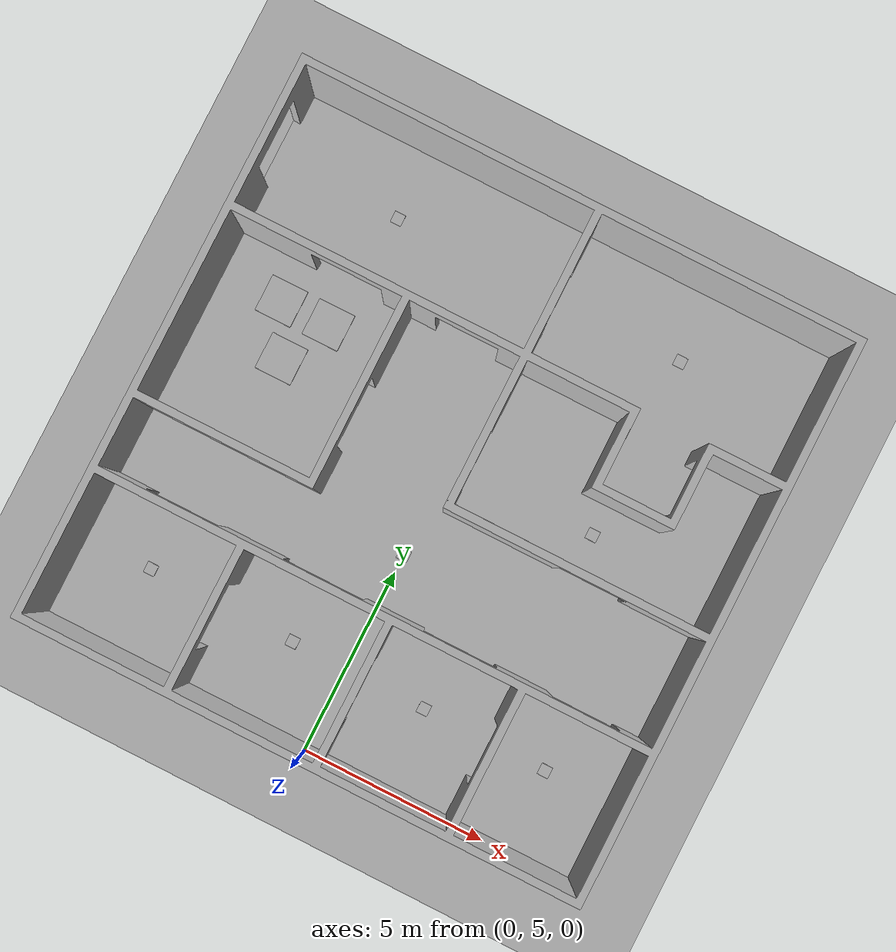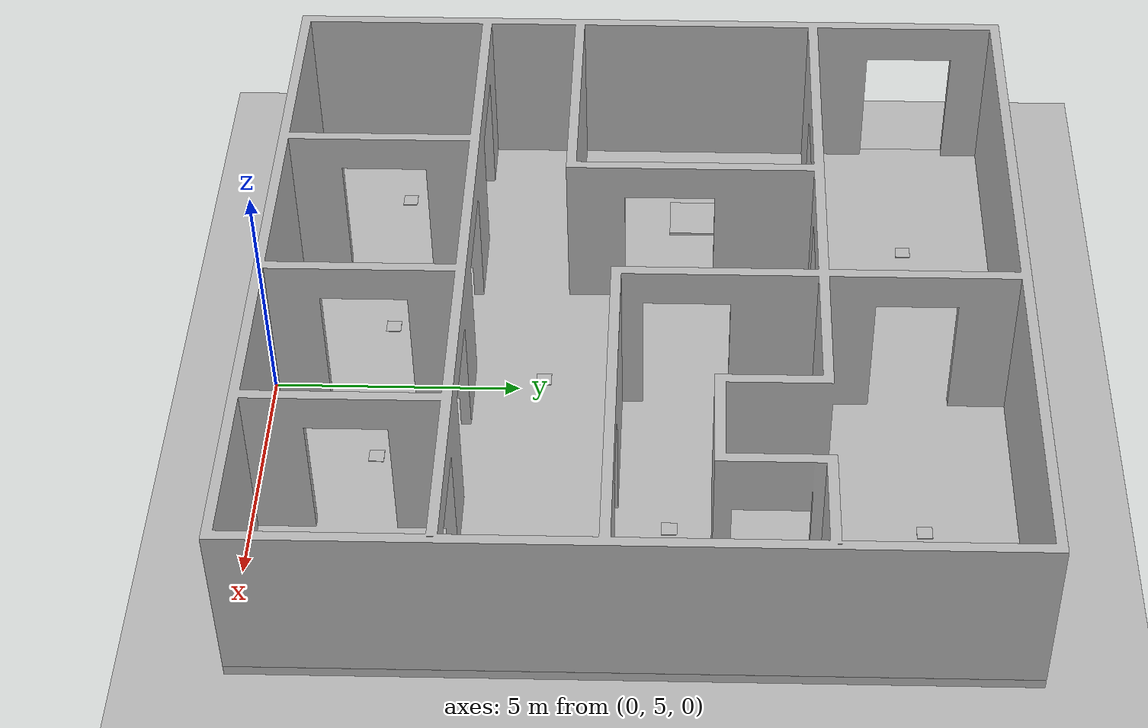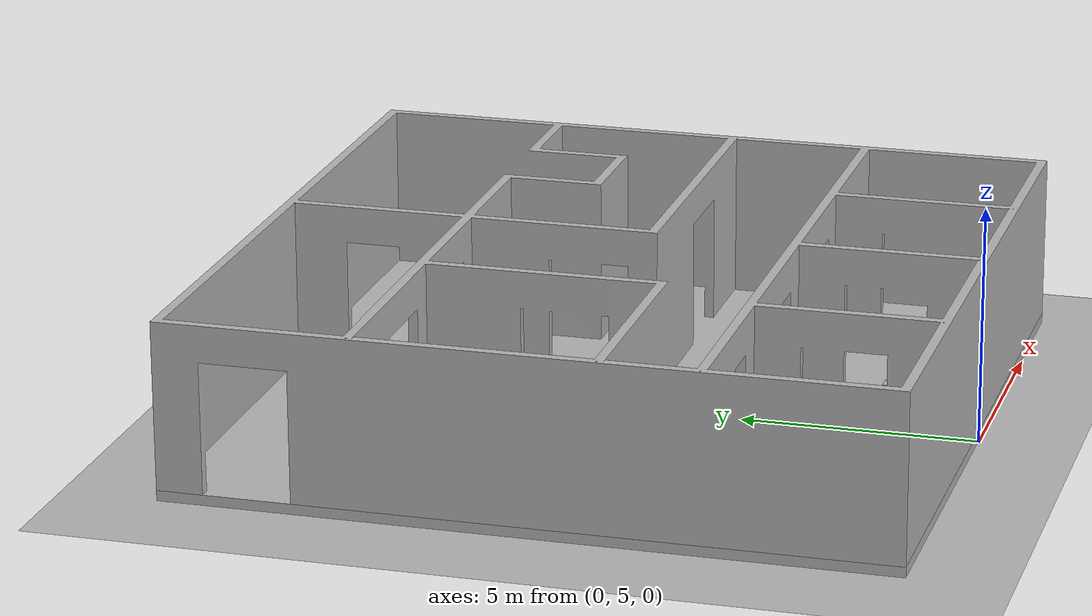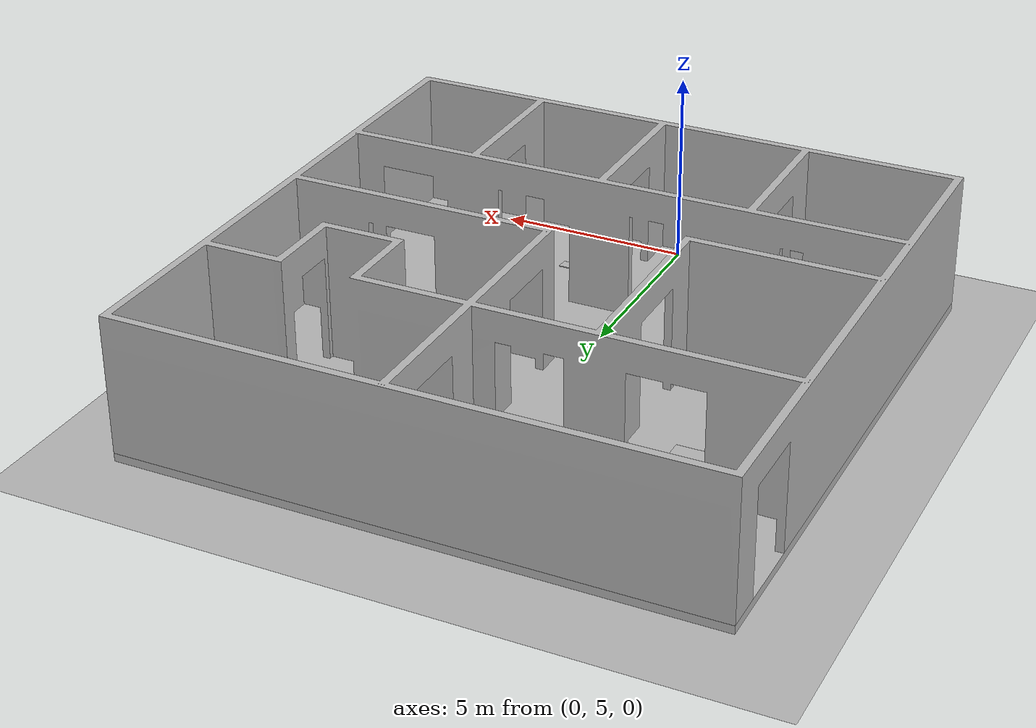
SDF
<?xml version="1.0"?>
<sdf version="1.5">
    <world name="default">
        <include>
            <uri>model://sun</uri>
        </include>

        <include>
            <uri>model://ground_my</uri>
        </include>

        <include>
            <uri>model://house_scene_2</uri>
            <static>true</static>
            <pose>0 12.5 0 0 0 0</pose>
        </include>

        <include>
            <uri>model://qr_1</uri>
            <static>true</static>
            <pose>0 12.5 0 0 0 0</pose>
        </include>

        <include>
            <uri>model://platform</uri>
            <static>true</static>
            <pose>-5.5 6.3 0.27 0 0 0</pose>
        </include>

        <include>
            <uri>model://platform_scnd</uri>
            <static>true</static>
            <pose>-5 13.5 0.27 0 0 0</pose>
        </include>

     </world>
</sdf>

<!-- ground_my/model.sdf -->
<sdf version="1.5">
    <model name="ground">
        <static>true</static>
        <link name="link">
            <collision name="collision">
                <geometry>
                    <mesh>
                        <scale>1 1 1</scale>
                        <uri>model://ground_my/meshes/ground.dae</uri>
                    </mesh>
                    <surface>
                    <friction>
                        <ode>
                            <mu>1.2</mu>
                            <mu2>1.2</mu2>
                        </ode>
                    </friction>
                    </surface>
                </geometry>
            </collision>
            <visual name="visual">
              <geometry>
                <mesh>
                    <scale>1 1 1</scale>
                    <uri>model://ground_my/meshes/ground.dae</uri>
                </mesh>
              </geometry>
             </visual>
        </link>
    </model>
</sdf>

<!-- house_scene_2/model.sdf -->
<sdf version="1.5">
    <model name="house">
        <static>true</static>
        <link name="link">
            <collision name="collision_wall">
                <pose>0 0 0.05 0 0 0</pose>
                <geometry>
                    <mesh>
                        <uri>model://house_scene_2/meshes/scene_two.stl</uri>
                    </mesh>
                </geometry>
            </collision>
            <visual name="visual_walls">
              <pose>0 0 0.05 0 0 0</pose>
              <geometry>
              <mesh>
                 <uri>model://house_scene_2/meshes/scene_two_house_new_doors_FIX.dae</uri>
              </mesh>
              </geometry>
              <material>
                  <script>
                      <uri>model://house_scene_2/materials/scripts</uri>
                      <uri>model://house_scene_2/materials/textures</uri>
                      <name>houseMat/Diffuse</name>
                  </script>
              </material>
             </visual>

             <collision name="collision_flor">
                <pose>0 0 0.05 0 0 0</pose>
                <geometry>
                    <mesh>
                        <uri>model://house_scene_2/meshes/scene_two_house_wallpapers_flor.dae</uri>
                    </mesh>
                </geometry>
            </collision>
            <visual name="visual_flor">
              <pose>0 0 0.05 0 0 0</pose>
              <geometry>
              <mesh>
                 <uri>model://house_scene_2/meshes/scene_two_house_wallpapers_flor.dae</uri>
              </mesh>
              </geometry>
              <material>
                  <script>
                      <uri>model://house_scene_2/materials/scripts</uri>
                      <uri>model://house_scene_2/materials/textures</uri>
                      <name>houseMat/Diffuse</name>
                  </script>
              </material>
             </visual>

        </link>
    </model>
</sdf>

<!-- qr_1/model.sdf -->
<sdf version="1.5">
    <model name="qr">
        <static>true</static>
        <link name="link">
            <collision name="collision1">
                <pose>-4 5.5 0.27 0 0 0</pose>
                <geometry>
                    <mesh>
                        <uri>model://qr_1/meshes/qr.stl</uri>
                    </mesh>
                </geometry>
            </collision>
            <visual name="visual1">

              <pose>-4 5.5 0.27 0 0 0</pose>
              <geometry>
              <mesh>
                 <uri>model://qr_1/meshes/qr1.dae</uri>
              </mesh>
              </geometry>

              <material>
                  <script>
                      <uri>model://qr_1/materials/scripts</uri>
                      <uri>model://qr_1/materials/textures</uri>
                      <name>qrMat/Diffuse</name>
                  </script>
              </material>
             </visual>

             <collision name="collision2">
                <pose>4 5.5 0.27 0 0 0</pose>
                <geometry>
                    <mesh>
                        <uri>model://qr_1/meshes/qr.stl</uri>
                    </mesh>
                </geometry>
            </collision>
             <visual name="visual2">

              <pose>4 5.5 0.27 0 0 0</pose>
              <geometry>
              <mesh>
                 <uri>model://qr_1/meshes/qr3.dae</uri>
              </mesh>
              </geometry>

              <material>
                  <script>
                      <uri>model://qr_1/materials/scripts</uri>
                      <uri>model://qr_1/materials/textures</uri>
                      <name>qrMat/Diffuse</name>
                  </script>
              </material>
             </visual>

             <collision name="collision3">
                <pose>4 0.6 0.27 0 0 0</pose>
                <geometry>
                    <mesh>
                        <uri>model://qr_1/meshes/qr.stl</uri>
                    </mesh>
                </geometry>
            </collision>
            <visual name="visual3">

              <pose>4 0.6 0.27 0 0 0</pose>
              <geometry>
              <mesh>
                 <uri>model://qr_1/meshes/qr4.dae</uri>
              </mesh>
              </geometry>

              <material>
                  <script>
                      <uri>model://qr_1/materials/scripts</uri>
                      <uri>model://qr_1/materials/textures</uri>
                      <name>qrMat/Diffuse</name>
                  </script>
              </material>
             </visual>

             <collision name="collision5">
                <pose>0 -2 0.27 0 0 0</pose>
                <geometry>
                    <mesh>
                        <uri>model://qr_1/meshes/qr.stl</uri>
                    </mesh>
                </geometry>
            </collision>
            <visual name="visual5">

              <pose>0 -2 0.27 0 0 0</pose>
              <geometry>
              <mesh>
                 <uri>model://qr_1/meshes/qr5.dae</uri>
              </mesh>
              </geometry>

              <material>
                  <script>
                      <uri>model://qr_1/materials/scripts</uri>
                      <uri>model://qr_1/materials/textures</uri>
                      <name>qrMat/Diffuse</name>
                  </script>
              </material>
             </visual>

             <collision name="collision6">
                <pose>-5.5 -5.2 0.27 0 0 0</pose>
                <geometry>
                    <mesh>
                        <uri>model://qr_1/meshes/qr.stl</uri>
                    </mesh>
                </geometry>
            </collision>
            <visual name="visual6">

              <pose>-5.5 -5.2 0.27 0 0 0</pose>
              <geometry>
              <mesh>
                 <uri>model://qr_1/meshes/qr13.dae</uri>
              </mesh>
              </geometry>

              <material>
                  <script>
                      <uri>model://qr_1/materials/scripts</uri>
                      <uri>model://qr_1/materials/textures</uri>
                      <name>qrMat/Diffuse</name>
                  </script>
              </material>
             </visual>

             <collision name="collision7">
                <pose>-1.5 -5.2 0.27 0 0 0</pose>
                <geometry>
                    <mesh>
                        <uri>model://qr_1/meshes/qr.stl</uri>
                    </mesh>
                </geometry>
            </collision>
             <visual name="visual7">

              <pose>-1.5 -5.2 0.27 0 0 0</pose>
              <geometry>
              <mesh>
                 <uri>model://qr_1/meshes/qr11.dae</uri>
              </mesh>
              </geometry>

              <material>
                  <script>
                      <uri>model://qr_1/materials/scripts</uri>
                      <uri>model://qr_1/materials/textures</uri>
                      <name>qrMat/Diffuse</name>
                  </script>
              </material>
             </visual>

             <collision name="collision8">
                <pose>2.2 -5.2 0.27 0 0 0</pose>
                <geometry>
                    <mesh>
                        <uri>model://qr_1/meshes/qr.stl</uri>
                    </mesh>
                </geometry>
            </collision>
            <visual name="visual8">

              <pose>2.2 -5.2 0.27 0 0 0</pose>
              <geometry>
              <mesh>
                 <uri>model://qr_1/meshes/qr9.dae</uri>
              </mesh>
              </geometry>

              <material>
                  <script>
                      <uri>model://qr_1/materials/scripts</uri>
                      <uri>model://qr_1/materials/textures</uri>
                      <name>qrMat/Diffuse</name>
                  </script>
              </material>
             </visual>

             <collision name="collision9">
                <pose>5.6 -5.2 0.27 0 0 0</pose>
                <geometry>
                    <mesh>
                        <uri>model://qr_1/meshes/qr.stl</uri>
                    </mesh>
                </geometry>
            </collision>
            <visual name="visual9">

              <pose>5.6 -5.2 0.27 0 0 0</pose>
              <geometry>
              <mesh>
                 <uri>model://qr_1/meshes/qr8.dae</uri>
              </mesh>
              </geometry>

              <material>
                  <script>
                      <uri>model://qr_1/materials/scripts</uri>
                      <uri>model://qr_1/materials/textures</uri>
                      <name>qrMat/Diffuse</name>
                  </script>
              </material>
             </visual>
        </link>
    </model>
</sdf>

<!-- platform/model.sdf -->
<sdf version="1.6">
  <model name="platform">
    <static>false</static>
    <link name="dummy_upper"/>

    <joint name="world_joint" type="fixed">
      <parent>world</parent>
      <child>dummy_upper</child>
    </joint>
  </model>
</sdf>

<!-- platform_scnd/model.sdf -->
<sdf version="1.5">
    <model name="platform_scnd">
        <static>true</static>
        <link name="link">
            <collision name="collision">
                <pose>0 0 0 0 0 0</pose>
                <geometry>
                    <mesh>
                        <uri>model://platform_scnd/meshes/metki.dae</uri>
                    </mesh>
                </geometry>
            </collision>
            <visual name="visual">
              <pose>0 0 0 0 0 0</pose>
              <geometry>
              <mesh>
                 <uri>model://platform_scnd/meshes/metki.dae</uri>
              </mesh>
              </geometry>
             </visual>
        </link>
    </model>
</sdf>
